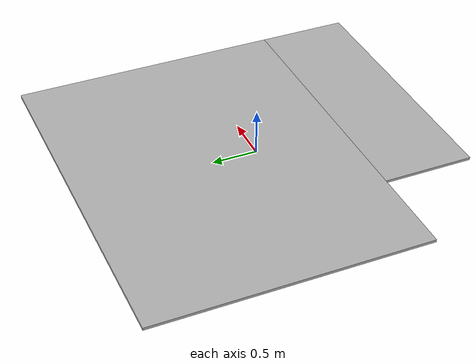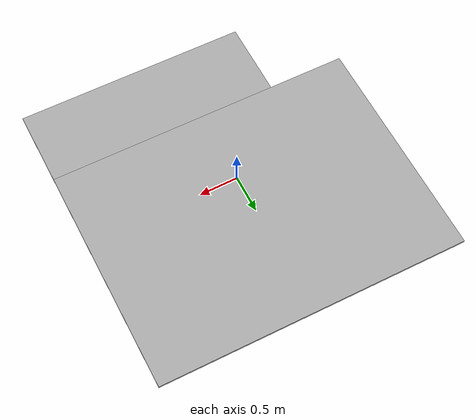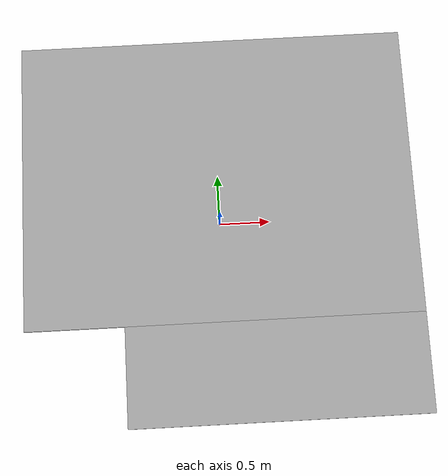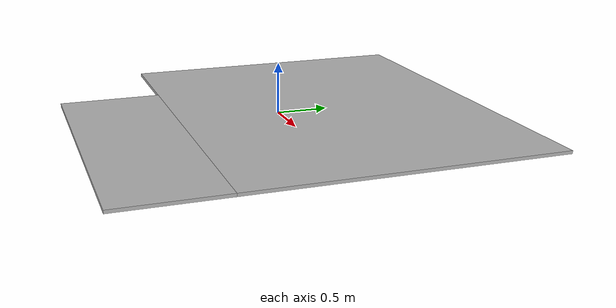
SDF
<?xml version="1.0" ?>
<sdf version="1.5">
  <model name="quad_hole_ground_corner">
    <static>true</static>
    <link name="ground">
      <pose>0 0.5 0 0 0 0</pose>
      <collision name="groundc">
        <geometry>
          <box>
            <size>4 3 0.03</size>
          </box>
        </geometry>
      </collision>
      <visual name="groundv">
        <geometry>
          <box>
            <size>4 3 0.03</size>
          </box>
        </geometry>
        <material>
          <script>
            <uri>model://quad_hole_ground_corner/materials/scripts</uri>
            <uri>model://quad_hole_ground_corner/materials/textures</uri>
            <name>vrc/quad_hole_ground_corner</name>
          </script>
        </material>
      </visual>
    </link>
    <link name="ground2">
      <pose>0.5 -1.5 0 0 0 0</pose>
      <collision name="groundc2">
        <geometry>
          <box>
            <size>3 1 0.03</size>
          </box>
        </geometry>
      </collision>
      <visual name="groundv2">
        <geometry>
          <box>
            <size>3 1 0.03</size>
          </box>
        </geometry>
        <material>
          <script>
            <uri>model://quad_hole_ground_corner/materials/scripts</uri>
            <uri>model://quad_hole_ground_corner/materials/textures</uri>
            <name>vrc/quad_hole_ground_corner</name>
          </script>
        </material>
      </visual>
    </link>

  </model>
</sdf>
